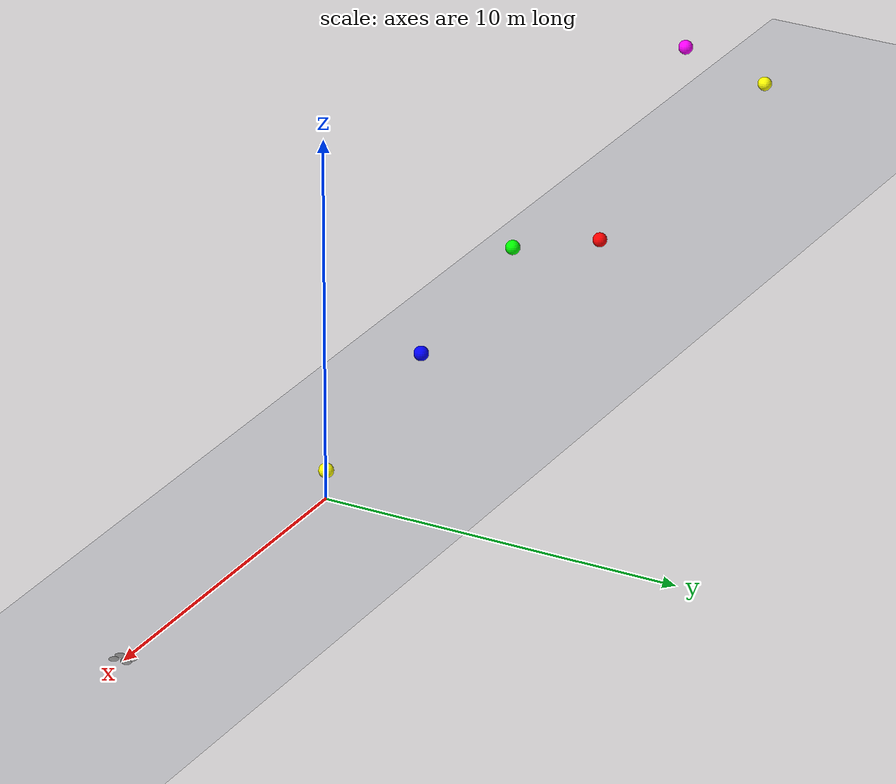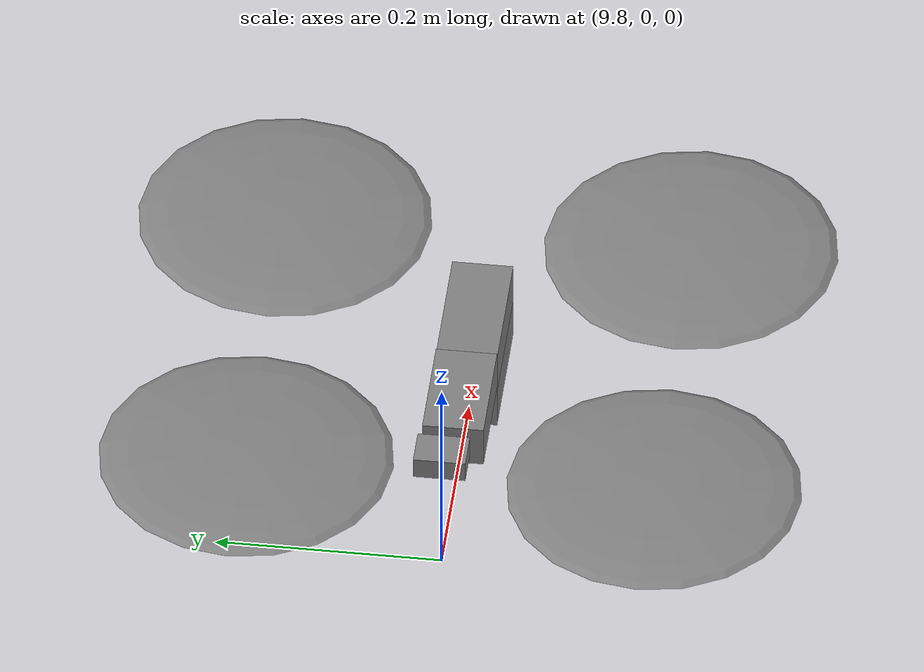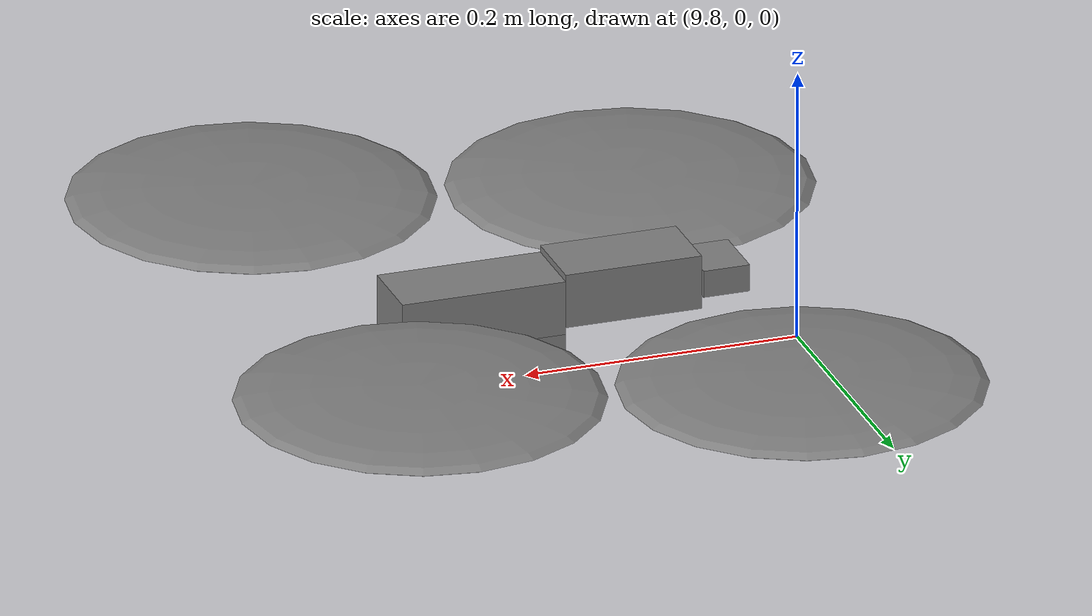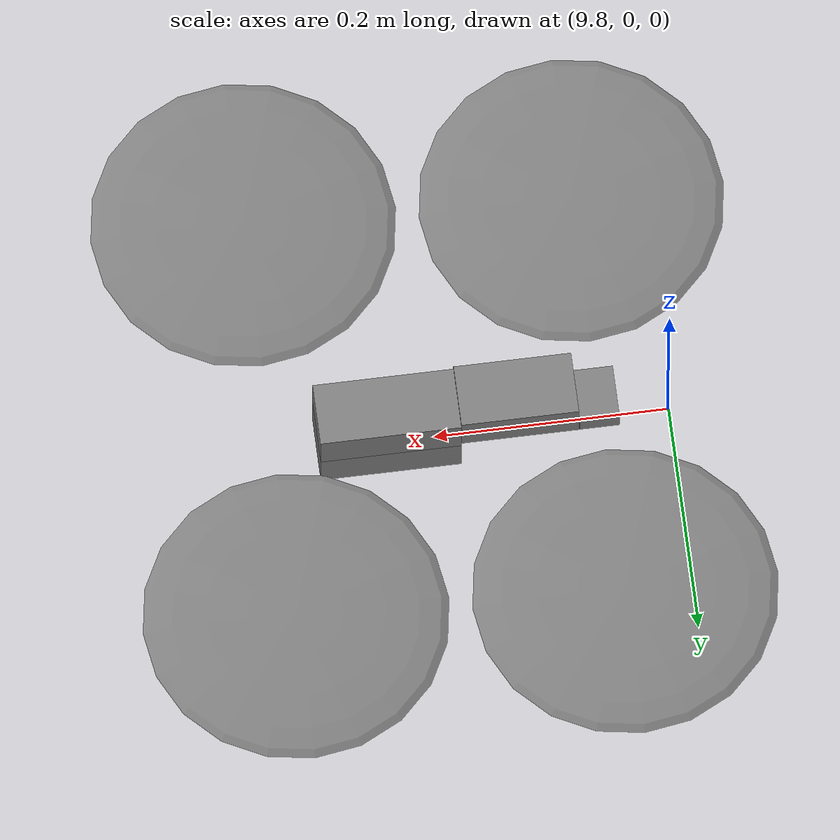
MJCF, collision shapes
<mujoco model="Skydio X2">
  <compiler autolimits="true" assetdir="assets"/>

  <option timestep="0.01" density="1.225" viscosity="1.8e-5"/>

  <default>
    <default class="x2">
      <geom mass="0"/>
      <motor ctrlrange="0 13"/>
      <mesh scale="0.01 0.01 0.01"/>
      <default class="visual">
        <geom group="2" type="mesh" contype="0" conaffinity="0"/>
      </default>
      <default class="collision">
        <geom group="3" type="box"/>
        <default class="rotor">
          <geom type="ellipsoid" size=".13 .13 .01"/>
        </default>
      </default>
      <site group="5"/>
    </default>
  </default>

  <asset>
    <texture type="2d" file="X2_lowpoly_texture_SpinningProps_1024.png"/>
    <material name="phong3SG" texture="X2_lowpoly_texture_SpinningProps_1024"/>
    <material name="invisible" rgba="0 0 0 0"/>
    <material name="floor" rgba="0.8 0.8 0.82 1"/>

    <mesh class="x2" file="X2_lowpoly.obj"/>
  </asset>

  <worldbody>
    <light name="top" pos="0 0 3" dir="0 0 -1" directional="true"/>
    <light name="front" pos="0 -2 2" dir="0 1 -0.5"/>

    <site name="p6" pos="-25 0 2" size="0.2" rgba="1 65 0 1"/>
    <site name="p5" pos="-20 0 5" size="0.2" rgba="1 0 123 1"/>
    <site name="p4" pos="-15 0 1.2" size="0.2" rgba="1 0 0 1"/>
    <site name="p3" pos="-10 0 3" size="0.2" rgba="0 1 0 1"/>
    <site name="p2" pos="-5 0 2" size="0.2" rgba="0 0 1 1"/>
    <site name="p1" pos="0 0 0.8" size="0.2" rgba="1 1 0 1"/>

    <geom name="floor" type="plane" size="40 4 0.1" material="floor" pos="0 0 0"/>

    <camera name="fixed" pos="-7.5 -2 1" xyaxes="1 0 0 0 0 1"/>
    <light name="spotlight" mode="targetbodycom" target="x2" pos="0 -1 2"/>

    <body name="x2" pos="10 0 0" childclass="x2">
      <freejoint/>

      <site name="imu" pos="0 0 .02"/>
      <geom material="phong3SG" mesh="X2_lowpoly" class="visual" quat="0 0 1 1"/>
      <geom class="collision" size=".06 .027 .02" pos=".04 0 .02"/>
      <geom class="collision" size=".06 .027 .02" pos=".04 0 .06"/>
      <geom class="collision" size=".05 .027 .02" pos="-.07 0 .065"/>
      <geom class="collision" size=".023 .017 .01" pos="-.137 .008 .065" quat="1 0 0 1"/>
      <geom name="rotor1" class="rotor" pos="-.14 -.18 .05" mass=".25"/>
      <geom name="rotor2" class="rotor" pos="-.14 .18 .05" mass=".25"/>
      <geom name="rotor3" class="rotor" pos=".14 .18 .08" mass=".25"/>
      <geom name="rotor4" class="rotor" pos=".14 -.18 .08" mass=".25"/>
      <geom size=".16 .04 .02" pos="0 0 0.02" type="ellipsoid" mass=".325" class="visual" material="invisible"/>
      <site name="thrust1" pos="-.14 -.18 .05"/>
      <site name="thrust2" pos="-.14 .18 .05"/>
      <site name="thrust3" pos=".14 .18 .08"/>
      <site name="thrust4" pos=".14 -.18 .08"/>
    </body>
  </worldbody>

  <actuator>
    <motor class="x2" name="thrust1" site="thrust1" gear="0 0 0.8 0 0 -.0201"/>
    <motor class="x2" name="thrust2" site="thrust2" gear="0 0 0.8 0 0  .0201"/>
    <motor class="x2" name="thrust3" site="thrust3" gear="0 0 0.8 0 0 -.0201"/>
    <motor class="x2" name="thrust4" site="thrust4" gear="0 0 0.8 0 0  .0201"/>
  </actuator>

  <sensor>
    <gyro name="body_gyro" site="imu"/>
    <accelerometer name="body_linacc" site="imu"/>
    <framequat name="body_quat" objtype="site" objname="imu"/>
  </sensor>

  <keyframe>
    <key name="hover" qpos="0 0 .3 1 0 0 0" ctrl="3.2495625 3.2495625 3.2495625 3.2495625"/>
  </keyframe>
</mujoco>
